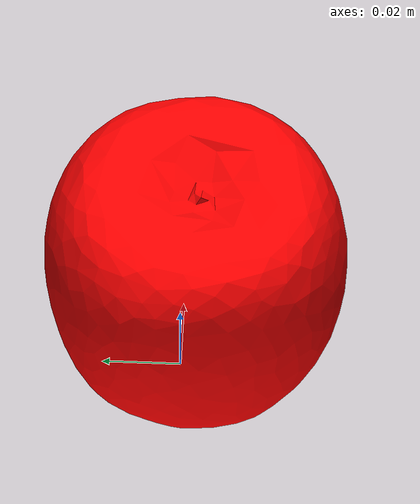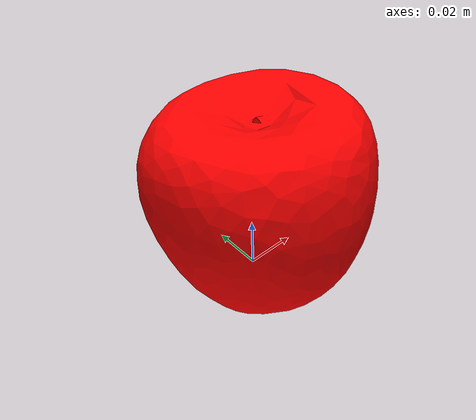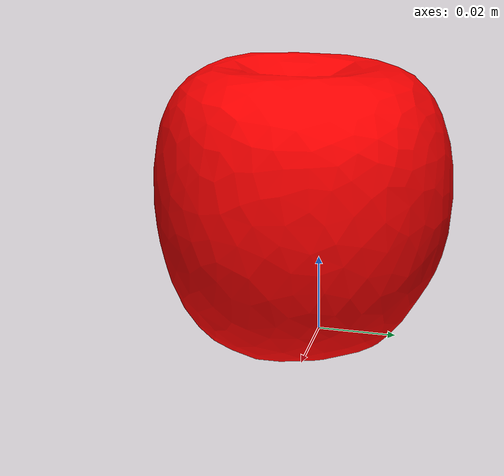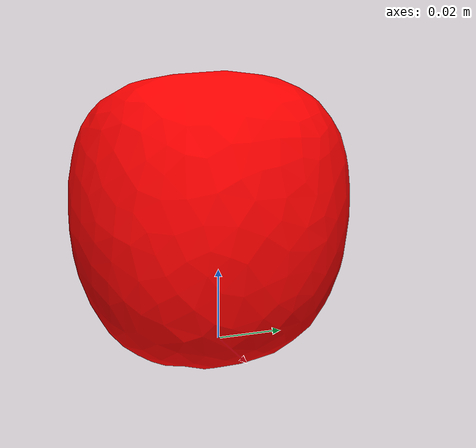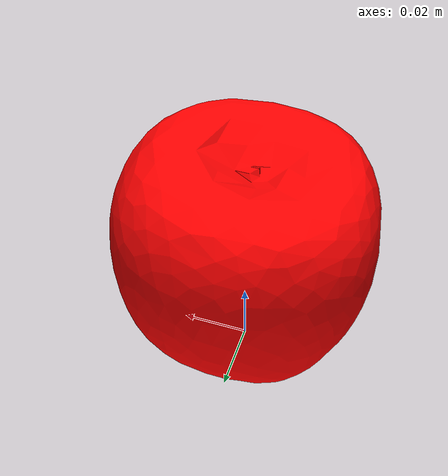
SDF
<?xml version="1.0" ?>
<!--
SDF automatically generated with: gz sdf -p /my_urdf.urdf > /my_sdf.sdf

Later edited by hand to rename the base link, add the
weld_base_to_world joint, and remove damping from the joints.
-->
<sdf version='1.6'>
  <model name='apple'>
    <link name='base_link_apple'>
      <pose frame=''>0 0 0 0 -0 0</pose>
      <inertial>
        <pose frame=''>0 0 0.035 0 -0 0</pose>
        <mass>0.1</mass>
        <inertia>
          <ixx>0.000363</ixx>
          <ixy>0</ixy>
          <ixz>0</ixz>
          <iyy>0.000363</iyy>
          <iyz>0</iyz>
          <izz>0.000363</izz>
        </inertia>
      </inertial>

      <visual name='apple_visual'>
        <pose frame=''>0 0 0 0 0 0</pose>
        <geometry>
          <mesh>
            <scale>1 1 1</scale>
            <uri>apple_1200_faces.obj</uri>
          </mesh>
        </geometry>
        <material>
          <diffuse>1.0 0.0 0.0 1.0</diffuse>
        </material>
      </visual>

      <collision name='collision'>
        <pose frame=''>0 0 0.032 0 0 0</pose>
        <geometry>
          <sphere>
            <radius>0.032</radius>
          </sphere>
        </geometry>
        <surface>
          <friction>
            <ode>
              <mu>1</mu>
              <mu2>1</mu2>
            </ode>
          </friction>
        </surface>
      </collision>
      <gravity>1</gravity>
      <self_collide>0</self_collide>

    </link>
  </model>
</sdf>
